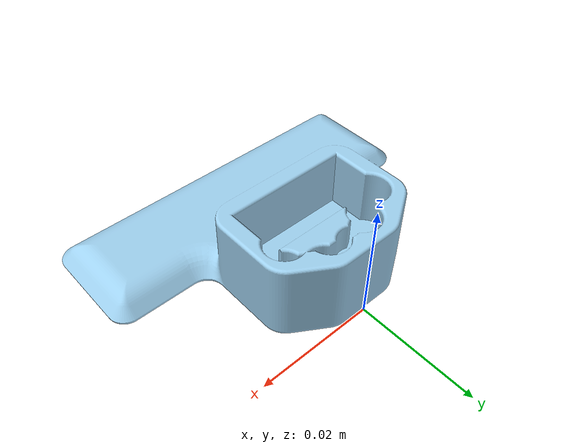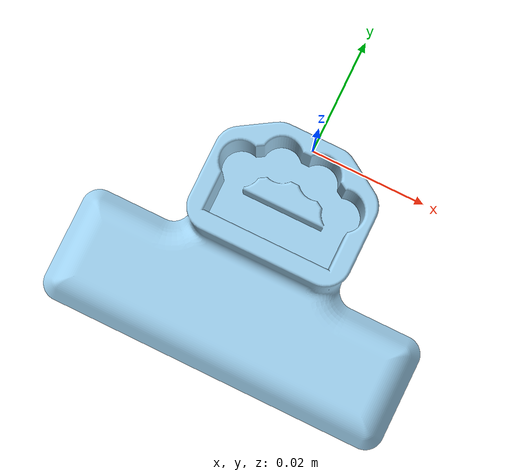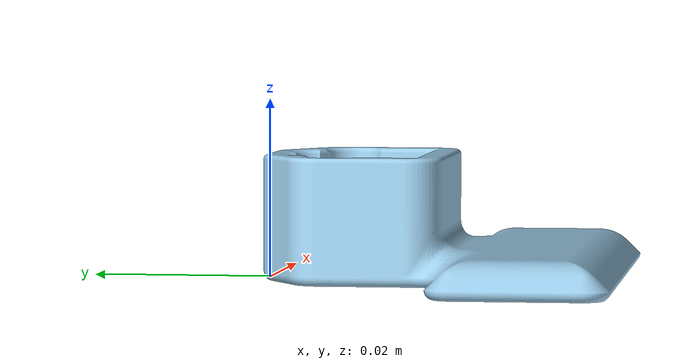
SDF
<?xml version='1.0'?>
<sdf version="1.4">
  <model name="goal">
    <pose>0 0 0 0 0 0</pose>
    <static>true</static>
    <link name="goal_foot">
      <visual name="visual">
        <geometry>
          <mesh>
            <uri>model://twister_goal/meshes/goal_foot.dae</uri>
          </mesh>
        </geometry>
        <material>Gazebo/DarkGrey</material>
      </visual>
    </link>
  </model>
</sdf>
